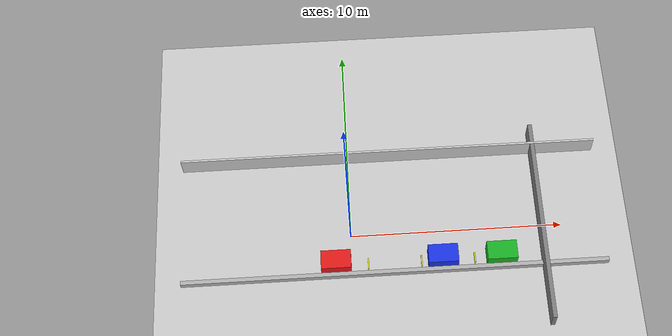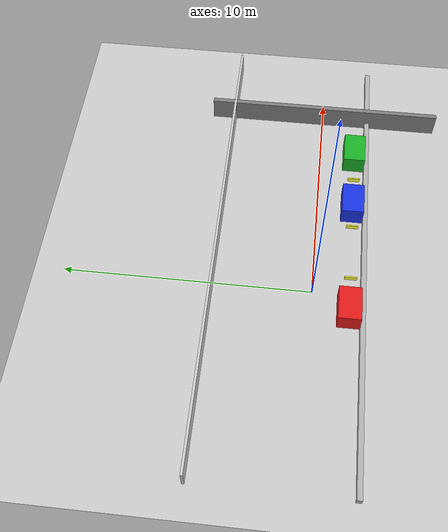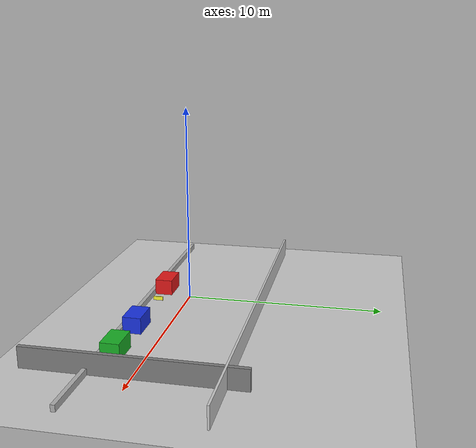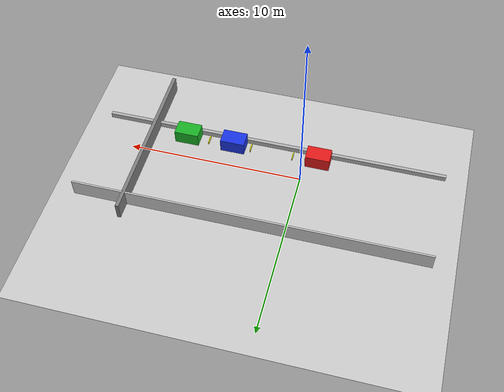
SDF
<?xml version="1.0" ?>
<sdf version="1.6">
  <world name="parking_lot">

    <!-- ── Lighting ─────────────────────────────────────────────────────── -->
    <include>
      <uri>model://sun</uri>
    </include>

    <!-- ── Ground plane ─────────────────────────────────────────────────── -->
    <include>
      <uri>model://ground_plane</uri>
    </include>

    <!-- ── Physics (slightly faster than realtime for quicker tests) ─────── -->
    <physics name="default" type="ode">
      <real_time_update_rate>1000</real_time_update_rate>
      <max_step_size>0.001</max_step_size>
      <real_time_factor>1</real_time_factor>
    </physics>

    <!-- ════════════════════════════════════════════════════════════════════
         ROAD BOUNDARY WALLS
         ════════════════════════════════════════════════════════════════════ -->

    <!-- Back wall (far side from robot) -->
    <model name="back_wall">
      <static>true</static>
      <pose>2 4 0.5 0 0 0</pose>
      <link name="link">
        <collision name="collision">
          <geometry><box><size>20 0.1 1.0</size></box></geometry>
        </collision>
        <visual name="visual">
          <geometry><box><size>20 0.1 1.0</size></box></geometry>
          <material><ambient>0.8 0.8 0.8 1</ambient><diffuse>0.8 0.8 0.8 1</diffuse></material>
        </visual>
      </link>
    </model>

    <model name="curb">
      <static>true</static>
      <pose>2 -2 0.15 0 0 0</pose>
      <link name="link">
        <collision name="collision">
          <geometry><box><size>20 0.2 0.3</size></box></geometry>
        </collision>
        <visual name="visual">
          <geometry><box><size>20 0.2 0.3</size></box></geometry>
          <material>
            <ambient>0.6 0.6 0.6 1</ambient>
            <diffuse>0.7 0.7 0.7 1</diffuse>
          </material>
        </visual>
      </link>
    </model>

    <!-- Divider left of slot (between car1 and slot) -->
    <model name="divider_1">
      <static>true</static>
      <pose>0.75 -1.5 0.1 0 0 0</pose>
      <link name="link">
        <collision name="collision">
          <geometry><box><size>0.05 0.5 0.2</size></box></geometry>
        </collision>
        <visual name="visual">
          <geometry><box><size>0.05 0.5 0.2</size></box></geometry>
          <material><ambient>1 1 0.2 1</ambient><diffuse>1 1 0.2 1</diffuse></material>
        </visual>
      </link>
    </model>

    <!-- Divider right of slot (between slot and car2) -->
    <model name="divider_2">
      <static>true</static>
      <pose>3.25 -1.5 0.1 0 0 0</pose>
      <link name="link">
        <collision name="collision">
          <geometry><box><size>0.05 0.5 0.2</size></box></geometry>
        </collision>
        <visual name="visual">
          <geometry><box><size>0.05 0.5 0.2</size></box></geometry>
          <material><ambient>1 1 0.2 1</ambient><diffuse>1 1 0.2 1</diffuse></material>
        </visual>
      </link>
    </model>

    <!-- Divider between car2 and car3 -->
    <model name="divider_3">
      <static>true</static>
      <pose>5.75 -1.5 0.1 0 0 0</pose>
      <link name="link">
        <collision name="collision">
          <geometry><box><size>0.05 0.5 0.2</size></box></geometry>
        </collision>
        <visual name="visual">
          <geometry><box><size>0.05 0.5 0.2</size></box></geometry>
          <material><ambient>1 1 0.2 1</ambient><diffuse>1 1 0.2 1</diffuse></material>
        </visual>
      </link>
    </model>

    <!-- Car 1 — RED (before the gap) -->
    <model name="car1">
      <static>true</static>
      <pose>-0.75 -1.45 0.4 0 0 0</pose>
      <link name="link">
        <collision name="collision">
          <geometry><box><size>1.4 0.9 0.8</size></box></geometry>
        </collision>
        <visual name="visual">
          <geometry><box><size>1.4 0.9 0.8</size></box></geometry>
          <material>
            <ambient>0.8 0.05 0.05 1</ambient>
            <diffuse>0.9 0.1 0.1 1</diffuse>
            <specular>0.3 0.3 0.3 1</specular>
          </material>
        </visual>
      </link>
    </model>

    <!-- Car 2 — BLUE (after the gap) -->
    <model name="car2">
      <static>true</static>
      <pose>4.25 -1.45 0.4 0 0 0</pose>
      <link name="link">
        <collision name="collision">
          <geometry><box><size>1.4 0.9 0.8</size></box></geometry>
        </collision>
        <visual name="visual">
          <geometry><box><size>1.4 0.9 0.8</size></box></geometry>
          <material>
            <ambient>0.05 0.1 0.85 1</ambient>
            <diffuse>0.1 0.2 0.9 1</diffuse>
            <specular>0.3 0.3 0.3 1</specular>
          </material>
        </visual>
      </link>
    </model>

    <!-- Car 3 — GREEN (further right, adds realism) -->
    <model name="car3">
      <static>true</static>
      <pose>7.0 -1.45 0.4 0 0 0</pose>
      <link name="link">
        <collision name="collision">
          <geometry><box><size>1.4 0.9 0.8</size></box></geometry>
        </collision>
        <visual name="visual">
          <geometry><box><size>1.4 0.9 0.8</size></box></geometry>
          <material>
            <ambient>0.05 0.6 0.1 1</ambient>
            <diffuse>0.1 0.7 0.15 1</diffuse>
            <specular>0.3 0.3 0.3 1</specular>
          </material>
        </visual>
      </link>
    </model>

    <model name="end_wall">
      <static>true</static>
      <pose>9 0 0.5 0 0 0</pose>
      <link name="link">
        <collision name="collision">
          <geometry><box><size>0.2 10 1</size></box></geometry>
        </collision>
        <visual name="visual">
          <geometry><box><size>0.2 10 1</size></box></geometry>
          <material><ambient>0.5 0.5 0.5 1</ambient></material>
        </visual>
      </link>
    </model>

  </world>
</sdf>
